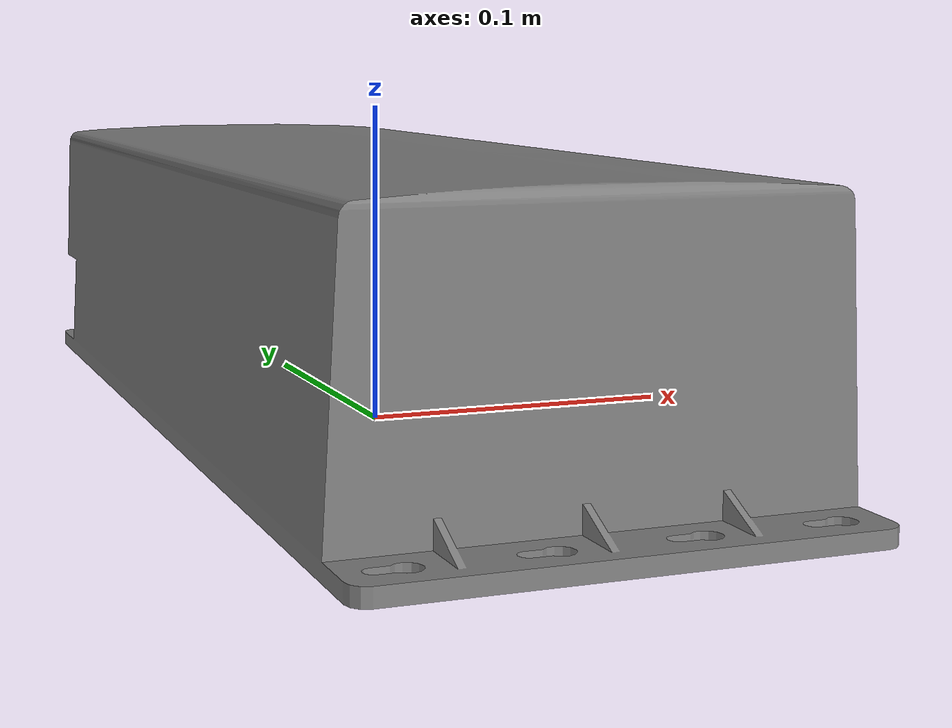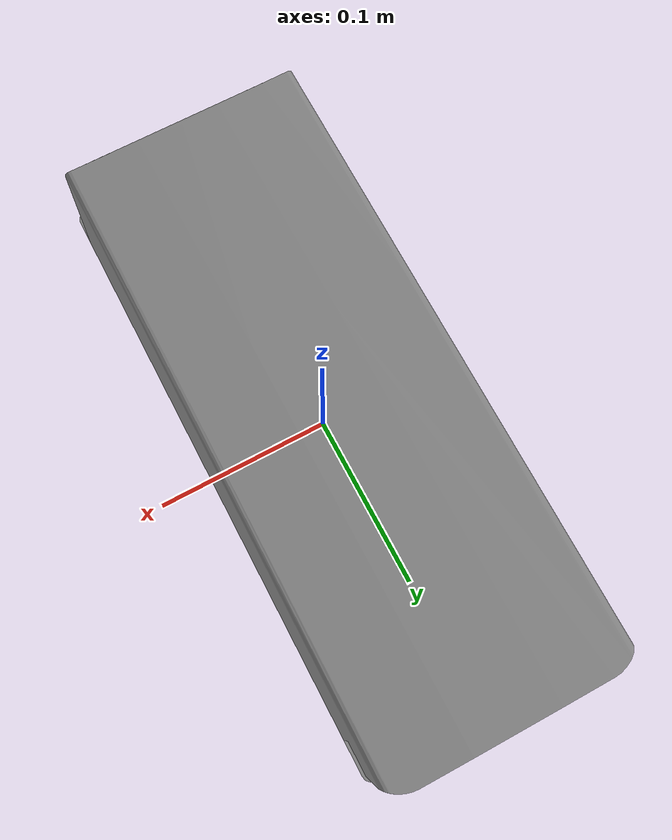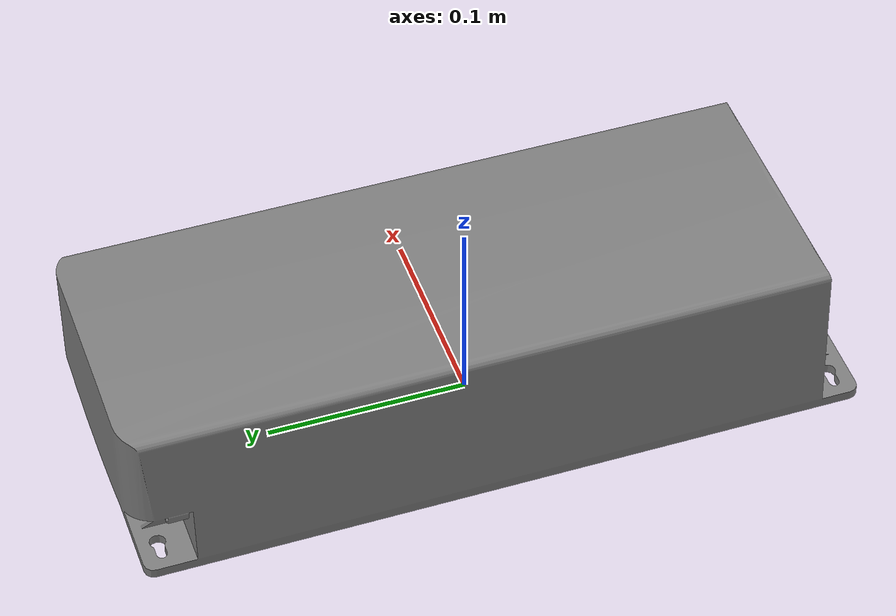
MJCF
<mujoco model="scu">
  <default>
    <default class="visual">
      <geom group="2" type="mesh" contype="0" conaffinity="0"/>
    </default>
    <default class="collision">
      <geom group="3" type="mesh"/>
    </default>
  </default>
  <asset>
    <material name="mtl_scu" specular="0.20000000000000004" shininess="1.0" rgba="0.50196078 0.50196078 0.50196078 1.0"/>
    <mesh file="scu.obj"/>
  </asset>
  <worldbody>
    <body name="scu">
      <geom material="mtl_scu" mesh="scu" class="visual"/>
      <geom mesh="scu" class="collision"/>
    </body>
  </worldbody>
</mujoco>
